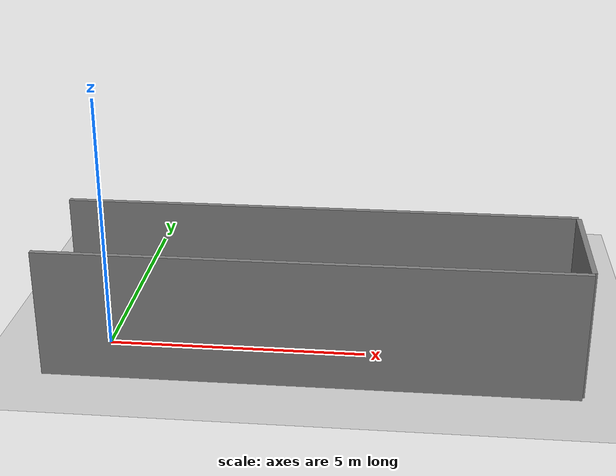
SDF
<?xml version="1.0" ?>
<sdf version="1.6">
  <world name="container_world">
    <!-- Light Source -->
    <include>
      <uri>model://sun</uri>
    </include>
    <!-- Ground Plane -->
    <include>
      <uri>model://ground_plane</uri>
    </include>

    <!-- Container (approx 2.45m wide, 2.5m high, 10m long) -->
    <model name="container">
      <static>true</static>
      <!-- Left Wall -->
      <link name="left_wall">
        <pose>4.0 1.25 1.25 0 0 0</pose>
        <collision name="collision">
          <geometry>
            <box>
              <size>10.0 0.1 2.5</size>
            </box>
          </geometry>
        </collision>
        <visual name="visual">
          <geometry>
            <box>
              <size>10.0 0.1 2.5</size>
            </box>
          </geometry>
          <material>
            <ambient>0.5 0.5 0.5 1</ambient>
            <diffuse>0.5 0.5 0.5 1</diffuse>
          </material>
        </visual>
      </link>

      <!-- Right Wall -->
      <link name="right_wall">
        <pose>4.0 -1.25 1.25 0 0 0</pose>
        <collision name="collision">
          <geometry>
            <box>
              <size>10.0 0.1 2.5</size>
            </box>
          </geometry>
        </collision>
        <visual name="visual">
          <geometry>
            <box>
              <size>10.0 0.1 2.5</size>
            </box>
          </geometry>
          <material>
            <ambient>0.5 0.5 0.5 1</ambient>
            <diffuse>0.5 0.5 0.5 1</diffuse>
          </material>
        </visual>
      </link>

      <!-- Back Wall -->
      <link name="back_wall">
        <pose>9.0 0.0 1.25 0 0 0</pose>
        <collision name="collision">
          <geometry>
            <box>
              <size>0.1 2.4 2.5</size>
            </box>
          </geometry>
        </collision>
        <visual name="visual">
          <geometry>
            <box>
              <size>0.1 2.4 2.5</size>
            </box>
          </geometry>
          <material>
            <ambient>0.5 0.5 0.5 1</ambient>
            <diffuse>0.5 0.5 0.5 1</diffuse>
          </material>
        </visual>
      </link>
    </model>

  </world>
</sdf>
